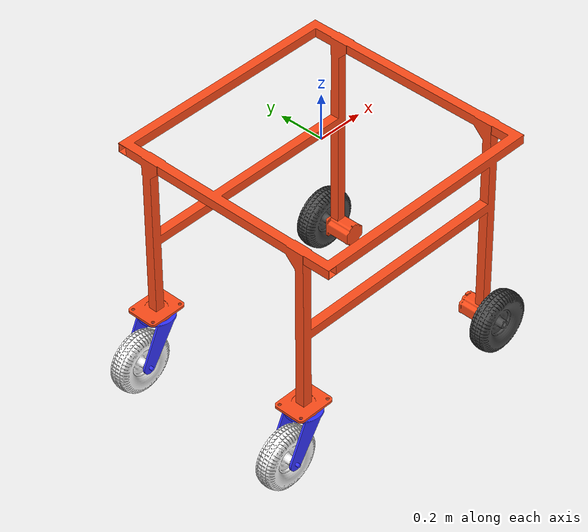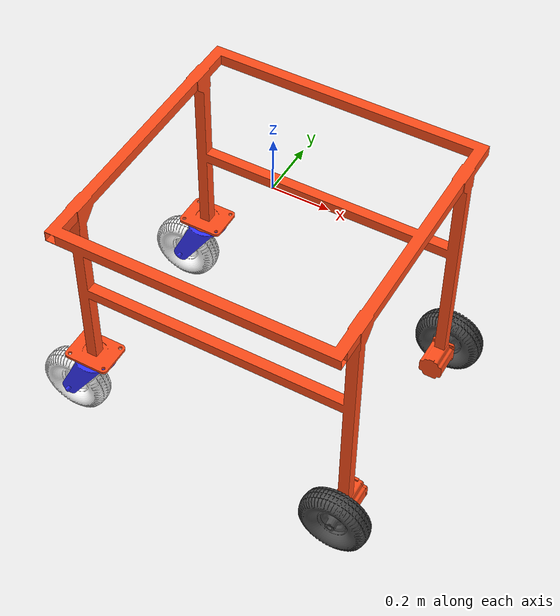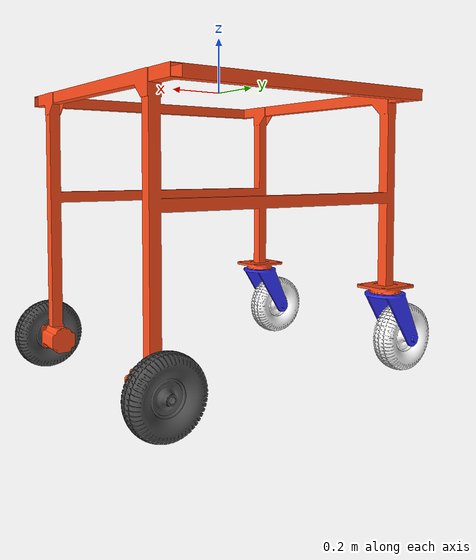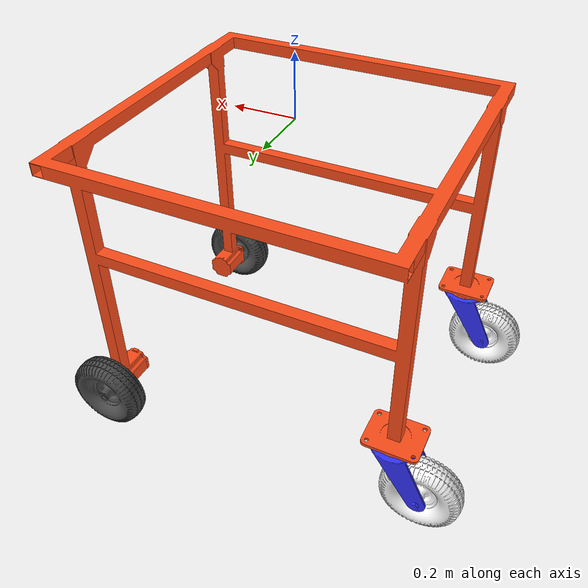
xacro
<?xml version="1.0"?>

<robot xmlns:xacro="http://www.ros.org/wiki/xacro" >

  <material name="black">
    <color rgba="0 0 0 1" />
  </material>

  <material name="gray">
    <color rgba="0.3 0.3 0.3 1" />
  </material>

  <material name="white">
    <color rgba="1 1 1 1" />
  </material>

  <material name="orange">
    <color rgba="1 0.3 0.1 1" />
  </material>

  <material name="blue">
    <color rgba="0.2 0.2 1 1" />
  </material>

  <!--BASE LINK-->

  <link name="base_link">
    <inertial>
      <origin
        xyz="0.046234 -0.00096018 -0.47057"
        rpy="0 0 0" />
      <mass
        value="11.59" />
      <inertia
        ixx="2.7487"
        ixy="0.000"
        ixz="0.21609"
        iyy="7.7539"
        iyz="0.000"
        izz="9.135" />
    </inertial>
    <visual>
      <origin
        xyz="0 0 0"
        rpy="0 0 0" />
      <geometry>
        <mesh
          filename="package://agri_robot_description/meshes/base_link.STL" />
      </geometry>
      <material name="orange"/>
    </visual>
    <collision>
      <origin
        xyz="0 0 0"
        rpy="0 0 0" />
      <geometry>
        <mesh
          filename="package://agri_robot_description/meshes/base_link.STL" />
      </geometry>
    </collision>
  </link>

  <gazebo reference="base_link">
    <material>Gazebo/Orange</material>
  </gazebo>

  <!--LEFT WHEEL LINK-->

  <link
    name="Left_wheel">
    <inertial>
      <origin
        xyz="0.000061067 -0.0010099 0.045157"
        rpy="0 0 0" />
      <mass
        value="1.0" />
      <inertia
        ixx="0.037507"
        ixy="0.00024657"
        ixz="-0.00042617"
        iyy="0.036946"
        iyz="0.0016924"
        izz="0.065317" />
    </inertial>
    <visual>
      <origin
        xyz="0 0 0"
        rpy="0 0 0" />
      <geometry>
        <mesh
          filename="package://agri_robot_description/meshes/Left_wheel.STL" />
      </geometry>
      <material name="gray"/>
    </visual>
    <collision>
      <origin
        xyz="0 0 0"
        rpy="0 0 0" />
      <geometry>
        <mesh
          filename="package://agri_robot_description/meshes/Left_wheel.STL" />
      </geometry>
    </collision>
  </link>

  <gazebo reference="Left_wheel">
    <material>Gazebo/Gray</material>
    <mu1 value="0.4"/>
    <mu2 value="0.4"/>
  </gazebo>

  <joint
    name="Left_wheel_joint"
    type="continuous">
    <origin
      xyz="0.50046 0.40877 -0.92806"
      rpy="-1.5708 0 0" />
    <parent
      link="base_link" />
    <child
      link="Left_wheel" />
    <axis
      xyz="0 0 1" />
    <limit
      effort="100"
      velocity="100" />
    <dynamics
      damping="0.1"
      friction="0.1" />
  </joint>

  <!--RIGHT WHEEL LINK-->

  <link
    name="Right_wheel">
    <inertial>
      <origin
        xyz="-0.000061067 -0.0010099 0.045157"
        rpy="0 0 0" />
      <mass
        value="1.0" />
      <inertia
        ixx="0.037507"
        ixy="0.00024657"
        ixz="-0.00042617"
        iyy="0.036946"
        iyz="0.0016924"
        izz="0.065317" />
    </inertial>
    <visual>
      <origin
        xyz="0 0 0"
        rpy="0 0 0" />
      <geometry>
        <mesh
          filename="package://agri_robot_description/meshes/Right_wheel.STL" />
      </geometry>
      <material name="gray"/>
    </visual>
    <collision>
      <origin
        xyz="0 0 0"
        rpy="0 0 0" />
      <geometry>
        <mesh
          filename="package://agri_robot_description/meshes/Right_wheel.STL" />
      </geometry>
    </collision>
  </link>

  <gazebo reference="Right_wheel">
    <material>Gazebo/Gray</material>
    <mu1 value="0.4"/>
    <mu2 value="0.4"/>
  </gazebo>

  <joint
    name="Right_wheel_joint"
    type="continuous">
    <origin
      xyz="0.50046 -0.4997 -0.92806"
      rpy="1.5708 0 3.1416" />
    <parent
      link="base_link" />
    <child
      link="Right_wheel" />
    <axis
      xyz="0 0 1" />
    <limit
      effort="100"
      velocity="100" />
    <dynamics
      damping="0.1"
      friction="0.1" />
  </joint>

  <!--BASE CASTER LEFT LINK-->

  <link
    name="Base_caster_left">
    <inertial>
      <origin
        xyz="-0.032832 -0.00018128 0.056902"
        rpy="0 0 0" />
      <mass
        value="0.45" />
      <inertia
        ixx="0.025915"
        ixy="0.00044677"
        ixz="0.0087669"
        iyy="0.025098"
        iyz="0.0047946"
        izz="0.018083" />
    </inertial>
    <visual>
      <origin
        xyz="0 0 0"
        rpy="0 0 0" />
      <geometry>
        <mesh
          filename="package://agri_robot_description/meshes/Base_caster_left.STL" />
      </geometry>
      <material name="blue"/>
    </visual>
    <collision>
      <origin
        xyz="0 0 0"
        rpy="0 0 0" />
      <geometry>
        <mesh
          filename="package://agri_robot_description/meshes/Base_caster_left.STL" />
      </geometry>
    </collision>
  </link>

  <gazebo reference="Base_caster_left">
    <material>Gazebo/Blue</material>
    <mu1 value="0.2"/>
    <mu2 value="0.2"/>
  </gazebo>

  <joint
    name="Base_caster_left_joint"
    type="continuous">
    <origin
      xyz="-0.5 0.38 -0.758"
      rpy="-3.1416 0 0" />
    <parent
      link="base_link" />
    <child
      link="Base_caster_left" />
    <axis
      xyz="0 0 1" />
    <limit
      effort="100"
      velocity="100" />
    <dynamics
      damping="0.1"
      friction="0.1" />
  </joint>

  <!--CASTER WHEEL LEFT LINK-->

  <link
    name="Caster_wheel_left">
    <inertial>
      <origin
        xyz="-0.00030285 0.0010085 0.0076161"
        rpy="0 0 0" />
      <mass
        value="1.0" />
      <inertia
        ixx="0.037507"
        ixy="0.00024657"
        ixz="-0.00042617"
        iyy="0.036946"
        iyz="0.0016924"
        izz="0.065317" />
    </inertial>
    <visual>
      <origin
        xyz="0 0 0"
        rpy="0 0 0" />
      <geometry>
        <mesh
          filename="package://agri_robot_description/meshes/Caster_wheel_left.STL" />
      </geometry>
      <material name="white"/>
    </visual>
    <collision>
      <origin
        xyz="0 0 0"
        rpy="0 0 0" />
      <geometry>
        <mesh
          filename="package://agri_robot_description/meshes/Caster_wheel_left.STL" />
      </geometry>
    </collision>
  </link>

  <gazebo reference="Caster_wheel_left">
    <material>Gazebo/White</material>
    <mu1 value="0.4"/>
    <mu2 value="0.4"/>
  </gazebo>

  <joint
    name="Caster_wheel_left_joint"
    type="continuous">
    <origin
      xyz="-0.09675 0.0072514 0.17"
      rpy="1.5708 0 0" />
    <parent
      link="Base_caster_left" />
    <child
      link="Caster_wheel_left" />
    <axis
      xyz="0 0 1" />
    <limit
      effort="100"
      velocity="100" />
    <dynamics
      damping="0.1"
      friction="0.1" />
  </joint>

  <!--BASE CASTER RIGHT LINK-->

  <link
    name="Base_caster_right">
    <inertial>
      <origin
        xyz="-0.032832 -0.00018128 0.056902"
        rpy="0 0 0" />
      <mass
        value="0.45" />
      <inertia
        ixx="0.025915"
        ixy="0.00044677"
        ixz="0.0087669"
        iyy="0.025098"
        iyz="0.0047946"
        izz="0.018083" />
    </inertial>
    <visual>
      <origin
        xyz="0 0 0"
        rpy="0 0 0" />
      <geometry>
        <mesh
          filename="package://agri_robot_description/meshes/Base_caster_right.STL" />
      </geometry>
      <material name="blue"/>
    </visual>
    <collision>
      <origin
        xyz="0 0 0"
        rpy="0 0 0" />
      <geometry>
        <mesh
          filename="package://agri_robot_description/meshes/Base_caster_right.STL" />
      </geometry>
    </collision>
  </link>

  <gazebo reference="Base_caster_right">
    <material>Gazebo/Blue</material>
    <mu1 value="0.2"/>
    <mu2 value="0.2"/>
  </gazebo>

  <joint
    name="Base_caster_right_joint"
    type="continuous">
    <origin
      xyz="-0.5 -0.38 -0.758"
      rpy="-3.1416 0 0" />
    <parent
      link="base_link" />
    <child
      link="Base_caster_right" />
    <axis
      xyz="0 0 1" />
    <limit
      effort="100"
      velocity="100" />
    <dynamics
      damping="0.1"
      friction="0.1" />
  </joint>

  <!--CASTER WHEEL RIGHT LINK-->

  <link
    name="Caster_wheel_right">
    <inertial>
      <origin
        xyz="0.00030285 -0.0010085 0.0076161"
        rpy="0 0 0" />
      <mass
        value="1.0" />
      <inertia
        ixx="0.037507"
        ixy="0.00024657"
        ixz="-0.00042617"
        iyy="0.036946"
        iyz="0.0016924"
        izz="0.065317" />
    </inertial>
    <visual>
      <origin
        xyz="0 0 0"
        rpy="0 0 0" />
      <geometry>
        <mesh
          filename="package://agri_robot_description/meshes/Caster_wheel_right.STL" />
      </geometry>
      <material name="white" />
    </visual>
    <collision>
      <origin
        xyz="0 0 0"
        rpy="0 0 0" />
      <geometry>
        <mesh
          filename="package://agri_robot_description/meshes/Caster_wheel_right.STL" />
      </geometry>
    </collision>
  </link>

  <gazebo reference="Caster_wheel_right">
    <material>Gazebo/White</material>
    <mu1 value="0.4"/>
    <mu2 value="0.4"/>
  </gazebo>

  <joint
    name="Caster_wheel_right_joint"
    type="continuous">
    <origin
      xyz="-0.09675 0.0072514 0.17"
      rpy="-1.5708 0 3.1416" />
    <parent
      link="Base_caster_right" />
    <child
      link="Caster_wheel_right" />
    <axis
      xyz="0 0 1" />
    <limit
      effort="100"
      velocity="100" />
    <dynamics
      damping="0.1"
      friction="0.1" />
  </joint>
</robot>
